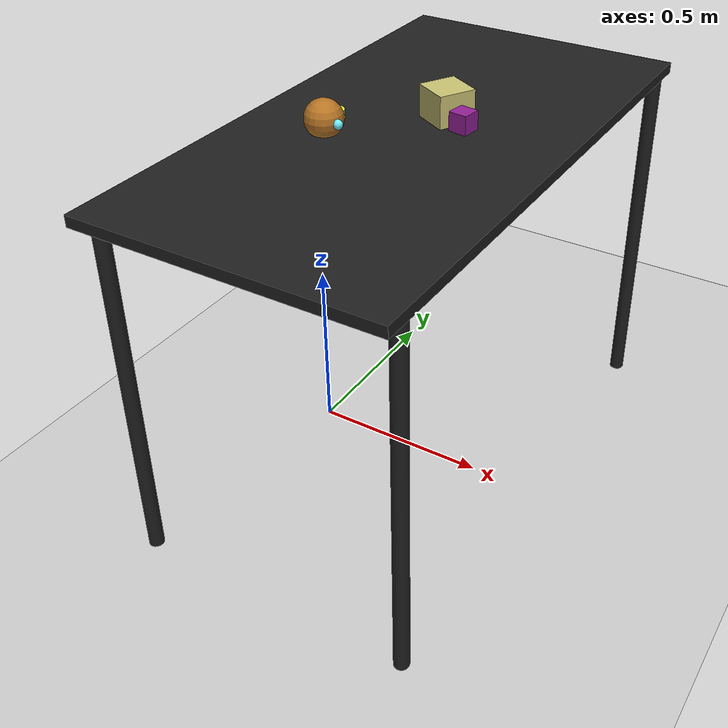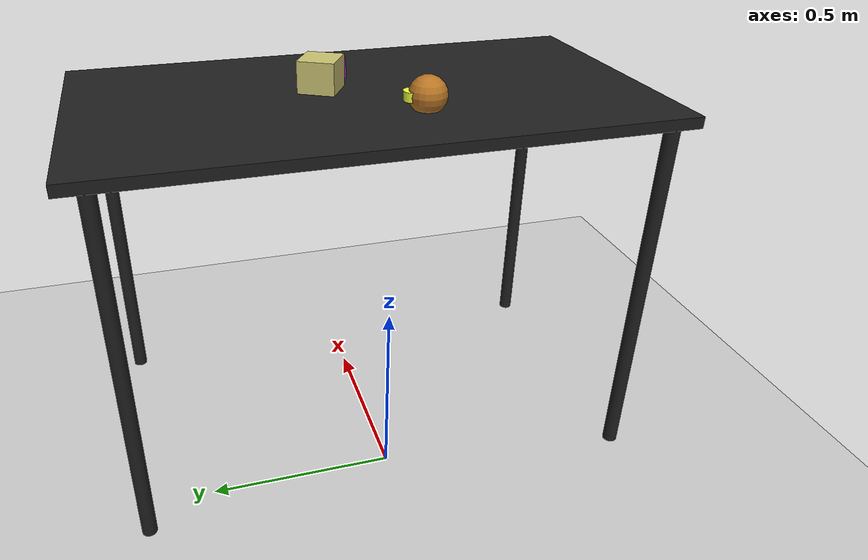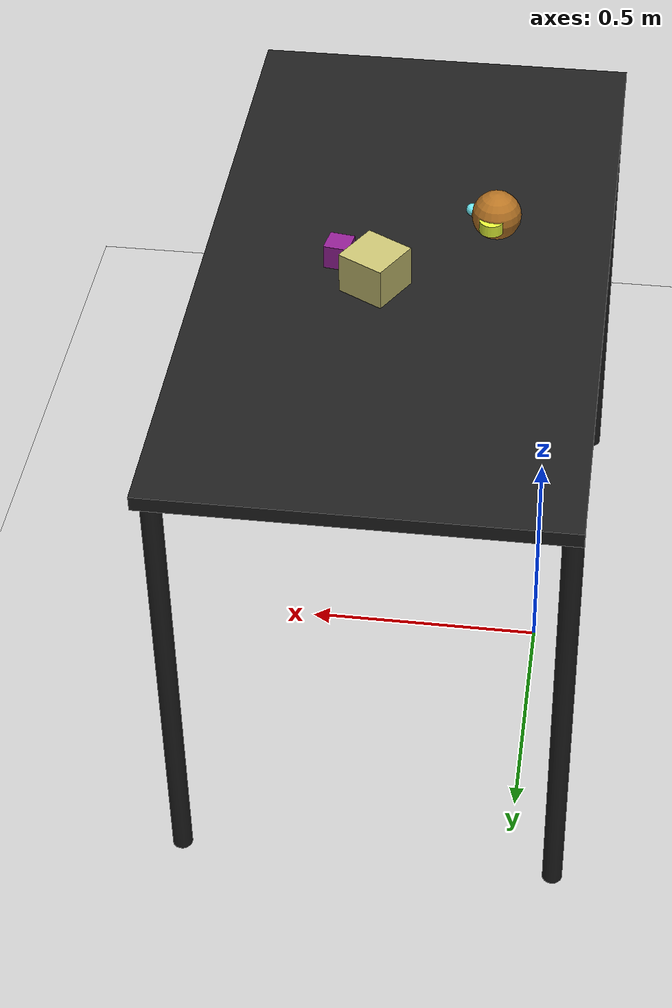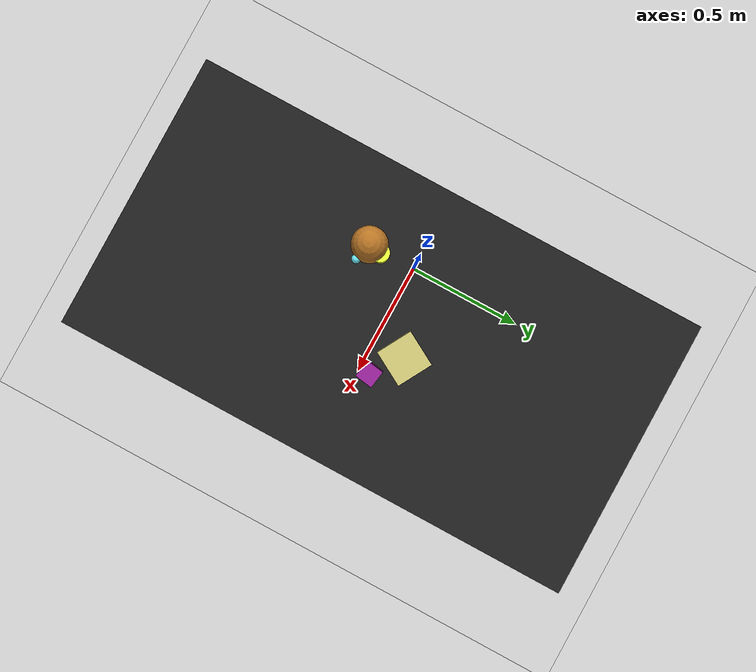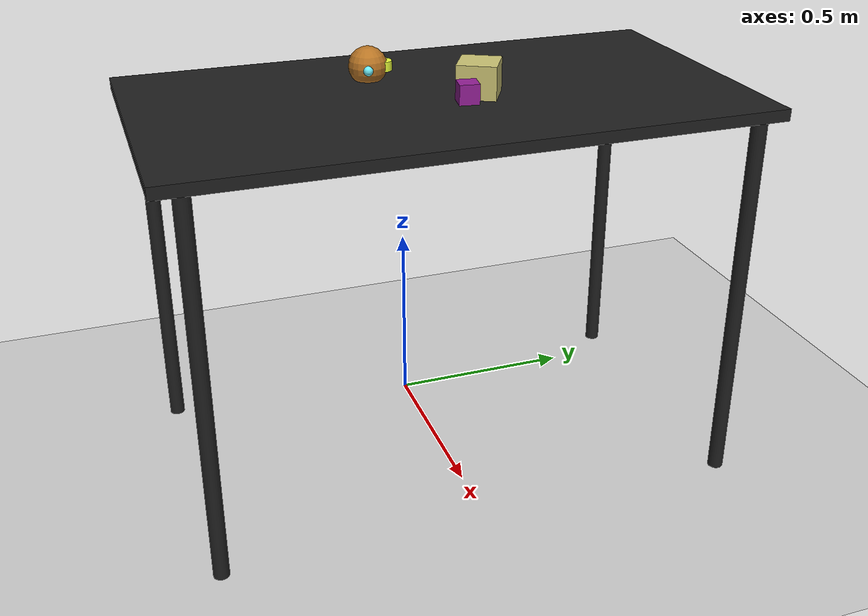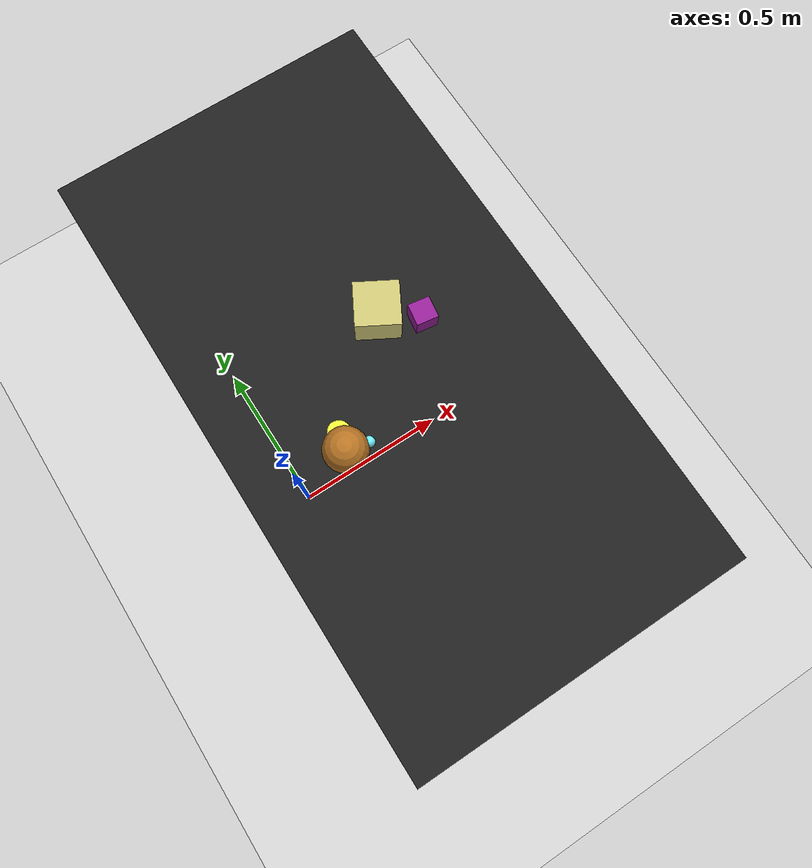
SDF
<?xml version="1.0" ?>
<sdf version="1.6">
  <world name="arm_world">
    <plugin filename="gz-sim-physics-system" name="gz::sim::systems::Physics">
      <engine>
        <filename>libgz-physics-bullet-featherstone-plugin.so</filename>
      </engine>
    </plugin>
    <plugin filename="gz-sim-user-commands-system" name="gz::sim::systems::UserCommands"/>
    <plugin filename="gz-sim-scene-broadcaster-system" name="gz::sim::systems::SceneBroadcaster"/>
    <plugin filename="gz-sim-sensors-system" name="gz::sim::systems::Sensors">
      <render_engine>ogre2</render_engine>
    </plugin>
    <gravity>0.0 0.0 -9.8</gravity>
    <scene>
      <shadows>false</shadows>
    </scene>
    <gui>
      <camera name="user_camera">
        <pose>0.75 -0.75 1.4 0 0.29 2.21</pose>
      </camera>
    </gui>
    <include>
      <uri>https://fuel.gazebosim.org/1.0/OpenRobotics/models/Sun</uri>
    </include>
    <model name="table">
      <static>true</static>
      <include>
        <uri>model://table</uri>
      </include>
      <pose>0.29 0 0 0 0 1.5708</pose>
    </model>
    <model name="ground_plane">
      <static>true</static>
      <link name="link">
        <collision name="collision">
          <geometry>
            <plane>
              <normal>0 0 1</normal>
            </plane>
          </geometry>
          <surface>
            <friction>
              <ode>
                <mu>1.0</mu>
                <mu2>1.0</mu2>
              </ode>
            </friction>
          </surface>
        </collision>
        <visual name="visual">
          <geometry>
            <plane>
              <normal>0 0 1</normal>
              <size>100 100</size>
            </plane>
          </geometry>
          <material>
            <ambient>0.8 0.8 0.8 1</ambient>
            <diffuse>0.8 0.8 0.8 1</diffuse>
            <specular>0.8 0.8 0.8 1</specular>
          </material>
        </visual>
      </link>
    </model>
    <model name="sphere_s_0">
      <pose>0.172 -0.139 1.05 0 0 1.02</pose>
      <link name="sphere_s_0_link">
        <inertial>
          <mass>0.05</mass>
          <inertia>
            <ixx>2.04e-7</ixx>
            <iyy>2.04e-7</iyy>
            <izz>3.9e-8</izz>
            <ixy>0</ixy>
            <ixz>0</ixz>
            <iyz>0</iyz>
          </inertia>
        </inertial>
        <collision name="sphere_s_0_collision">
          <geometry>
            <sphere>
              <radius>0.0125</radius>
            </sphere>
          </geometry>
          <surface>
            <friction>
              <ode>
                <mu>0.8</mu>
                <mu2>0.8</mu2>
                <fdir1>0 0 1</fdir1>
                <slip1>0.001</slip1>
                <slip2>0.001</slip2>
              </ode>
              <torsional>
                <coefficient>0.1</coefficient>
                <surface_radius>0.015</surface_radius>
                <use_patch_radius>true</use_patch_radius>
              </torsional>
            </friction>
            <contact>
              <ode>
                <kp>1e5</kp>
                <kd>10</kd>
                <max_vel>0.1</max_vel>
                <min_depth>0.001</min_depth>
                <soft_cfm>0.01</soft_cfm>
                <soft_erp>0.2</soft_erp>
              </ode>
            </contact>
            <bounce>
              <restitution_coefficient>0.2</restitution_coefficient>
              <threshold>0.01</threshold>
            </bounce>
          </surface>
        </collision>
        <visual name="sphere_s_0_visual">
          <geometry>
            <sphere>
              <radius>0.0125</radius>
            </sphere>
          </geometry>
          <material>
            <ambient>0.42 0.91 0.95 1</ambient>
            <diffuse>0.42 0.91 0.95 1</diffuse>
          </material>
        </visual>
        <velocity_decay>
          <linear>1</linear>
          <angular>1</angular>
        </velocity_decay>
      </link>
    </model>
    <model name="cube_l_1">
      <pose>0.339 0.093 1.05 0 0 1.06</pose>
      <link name="cube_l_1_link">
        <inertial>
          <mass>0.05</mass>
          <inertia>
            <ixx>2.04e-7</ixx>
            <iyy>2.04e-7</iyy>
            <izz>3.9e-8</izz>
            <ixy>0</ixy>
            <ixz>0</ixz>
            <iyz>0</iyz>
          </inertia>
        </inertial>
        <collision name="cube_l_1_collision">
          <geometry>
            <box>
              <size>0.1 0.1 0.1</size>
            </box>
          </geometry>
          <surface>
            <friction>
              <ode>
                <mu>0.8</mu>
                <mu2>0.8</mu2>
                <fdir1>0 0 1</fdir1>
                <slip1>0.001</slip1>
                <slip2>0.001</slip2>
              </ode>
              <torsional>
                <coefficient>0.1</coefficient>
                <surface_radius>0.015</surface_radius>
                <use_patch_radius>true</use_patch_radius>
              </torsional>
            </friction>
            <contact>
              <ode>
                <kp>1e5</kp>
                <kd>10</kd>
                <max_vel>0.1</max_vel>
                <min_depth>0.001</min_depth>
                <soft_cfm>0.01</soft_cfm>
                <soft_erp>0.2</soft_erp>
              </ode>
            </contact>
            <bounce>
              <restitution_coefficient>0.2</restitution_coefficient>
              <threshold>0.01</threshold>
            </bounce>
          </surface>
        </collision>
        <visual name="cube_l_1_visual">
          <geometry>
            <box>
              <size>0.1 0.1 0.1</size>
            </box>
          </geometry>
          <material>
            <ambient>0.79 0.76 0.45 1</ambient>
            <diffuse>0.79 0.76 0.45 1</diffuse>
          </material>
        </visual>
        <velocity_decay>
          <linear>1</linear>
          <angular>1</angular>
        </velocity_decay>
      </link>
    </model>
    <model name="cube_m_2">
      <pose>0.417 0.034 1.05 0 0 2.99</pose>
      <link name="cube_m_2_link">
        <inertial>
          <mass>0.05</mass>
          <inertia>
            <ixx>2.04e-7</ixx>
            <iyy>2.04e-7</iyy>
            <izz>3.9e-8</izz>
            <ixy>0</ixy>
            <ixz>0</ixz>
            <iyz>0</iyz>
          </inertia>
        </inertial>
        <collision name="cube_m_2_collision">
          <geometry>
            <box>
              <size>0.05 0.05 0.05</size>
            </box>
          </geometry>
          <surface>
            <friction>
              <ode>
                <mu>0.8</mu>
                <mu2>0.8</mu2>
                <fdir1>0 0 1</fdir1>
                <slip1>0.001</slip1>
                <slip2>0.001</slip2>
              </ode>
              <torsional>
                <coefficient>0.1</coefficient>
                <surface_radius>0.015</surface_radius>
                <use_patch_radius>true</use_patch_radius>
              </torsional>
            </friction>
            <contact>
              <ode>
                <kp>1e5</kp>
                <kd>10</kd>
                <max_vel>0.1</max_vel>
                <min_depth>0.001</min_depth>
                <soft_cfm>0.01</soft_cfm>
                <soft_erp>0.2</soft_erp>
              </ode>
            </contact>
            <bounce>
              <restitution_coefficient>0.2</restitution_coefficient>
              <threshold>0.01</threshold>
            </bounce>
          </surface>
        </collision>
        <visual name="cube_m_2_visual">
          <geometry>
            <box>
              <size>0.05 0.05 0.05</size>
            </box>
          </geometry>
          <material>
            <ambient>0.57 0.12 0.58 1</ambient>
            <diffuse>0.57 0.12 0.58 1</diffuse>
          </material>
        </visual>
        <velocity_decay>
          <linear>1</linear>
          <angular>1</angular>
        </velocity_decay>
      </link>
    </model>
    <model name="cylinder_m_3">
      <pose>0.129 -0.09 1.05 0 0 4.52</pose>
      <link name="cylinder_m_3_link">
        <inertial>
          <mass>0.05</mass>
          <inertia>
            <ixx>2.04e-7</ixx>
            <iyy>2.04e-7</iyy>
            <izz>3.9e-8</izz>
            <ixy>0</ixy>
            <ixz>0</ixz>
            <iyz>0</iyz>
          </inertia>
        </inertial>
        <collision name="cylinder_m_3_collision">
          <geometry>
            <cylinder>
              <radius>0.025</radius>
              <length>0.025</length>
            </cylinder>
          </geometry>
          <surface>
            <friction>
              <ode>
                <mu>0.8</mu>
                <mu2>0.8</mu2>
                <fdir1>0 0 1</fdir1>
                <slip1>0.001</slip1>
                <slip2>0.001</slip2>
              </ode>
              <torsional>
                <coefficient>0.1</coefficient>
                <surface_radius>0.015</surface_radius>
                <use_patch_radius>true</use_patch_radius>
              </torsional>
            </friction>
            <contact>
              <ode>
                <kp>1e5</kp>
                <kd>10</kd>
                <max_vel>0.1</max_vel>
                <min_depth>0.001</min_depth>
                <soft_cfm>0.01</soft_cfm>
                <soft_erp>0.2</soft_erp>
              </ode>
            </contact>
            <bounce>
              <restitution_coefficient>0.2</restitution_coefficient>
              <threshold>0.01</threshold>
            </bounce>
          </surface>
        </collision>
        <visual name="cylinder_m_3_visual">
          <geometry>
            <cylinder>
              <radius>0.025</radius>
              <length>0.025</length>
            </cylinder>
          </geometry>
          <material>
            <ambient>0.91 0.99 0.22 1</ambient>
            <diffuse>0.91 0.99 0.22 1</diffuse>
          </material>
        </visual>
        <velocity_decay>
          <linear>1</linear>
          <angular>1</angular>
        </velocity_decay>
      </link>
    </model>
    <model name="sphere_l_4">
      <pose>0.122 -0.126 1.05 0 0 1.1</pose>
      <link name="sphere_l_4_link">
        <inertial>
          <mass>0.05</mass>
          <inertia>
            <ixx>2.04e-7</ixx>
            <iyy>2.04e-7</iyy>
            <izz>3.9e-8</izz>
            <ixy>0</ixy>
            <ixz>0</ixz>
            <iyz>0</iyz>
          </inertia>
        </inertial>
        <collision name="sphere_l_4_collision">
          <geometry>
            <sphere>
              <radius>0.05</radius>
            </sphere>
          </geometry>
          <surface>
            <friction>
              <ode>
                <mu>0.8</mu>
                <mu2>0.8</mu2>
                <fdir1>0 0 1</fdir1>
                <slip1>0.001</slip1>
                <slip2>0.001</slip2>
              </ode>
              <torsional>
                <coefficient>0.1</coefficient>
                <surface_radius>0.015</surface_radius>
                <use_patch_radius>true</use_patch_radius>
              </torsional>
            </friction>
            <contact>
              <ode>
                <kp>1e5</kp>
                <kd>10</kd>
                <max_vel>0.1</max_vel>
                <min_depth>0.001</min_depth>
                <soft_cfm>0.01</soft_cfm>
                <soft_erp>0.2</soft_erp>
              </ode>
            </contact>
            <bounce>
              <restitution_coefficient>0.2</restitution_coefficient>
              <threshold>0.01</threshold>
            </bounce>
          </surface>
        </collision>
        <visual name="sphere_l_4_visual">
          <geometry>
            <sphere>
              <radius>0.05</radius>
            </sphere>
          </geometry>
          <material>
            <ambient>0.71 0.45 0.14 1</ambient>
            <diffuse>0.71 0.45 0.14 1</diffuse>
          </material>
        </visual>
        <velocity_decay>
          <linear>1</linear>
          <angular>1</angular>
        </velocity_decay>
      </link>
    </model>
  </world>
</sdf>

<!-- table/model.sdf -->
<sdf version="1.5">
  <model name="table">
    <static>true</static>
    <link name="link">
      <collision name="surface">
        <pose>0 0 1.0 0 0 0</pose>
        <geometry>
          <box>
            <size>1.5 0.8 0.03</size>
          </box>
        </geometry>
        <surface>
          <friction>
            <ode>
              <mu>0.6</mu>
              <mu2>0.6</mu2>
            </ode>
          </friction>
        </surface>
      </collision>
      <visual name="surface">
        <pose>0 0 1.0 0 0 0</pose>
        <geometry>
          <box>
            <size>1.5 0.8 0.03</size>
          </box>
        </geometry>
        <material>
          <script>
            <uri>file://media/materials/scripts/gazebo.material</uri>
            <name>Gazebo/Black</name>
          </script>
        </material>
      </visual>
      <collision name="front_left_leg">
        <pose>0.68 0.38 0.5 0 0 0</pose>
        <geometry>
          <cylinder>
            <radius>0.02</radius>
            <length>1.0</length>
          </cylinder>
        </geometry>
      </collision>
      <visual name="front_left_leg">
        <pose>0.68 0.38 0.5 0 0 0</pose>
        <geometry>
          <cylinder>
            <radius>0.02</radius>
            <length>1.0</length>
          </cylinder>
        </geometry>
        <material>
          <script>
            <uri>file://media/materials/scripts/gazebo.material</uri>
            <name>Gazebo/Black</name>
          </script>
        </material>
      </visual>
      <collision name="front_right_leg">
        <pose>0.68 -0.38 0.5 0 0 0</pose>
        <geometry>
          <cylinder>
            <radius>0.02</radius>
            <length>1.0</length>
          </cylinder>
        </geometry>
      </collision>
      <visual name="front_right_leg">
        <pose>0.68 -0.38 0.5 0 0 0</pose>
        <geometry>
          <cylinder>
            <radius>0.02</radius>
            <length>1.0</length>
          </cylinder>
        </geometry>
        <material>
          <script>
            <uri>file://media/materials/scripts/gazebo.material</uri>
            <name>Gazebo/Black</name>
          </script>
        </material>
      </visual>
      <collision name="back_right_leg">
        <pose>-0.68 -0.38 0.5 0 0 0</pose>
        <geometry>
          <cylinder>
            <radius>0.02</radius>
            <length>1.0</length>
          </cylinder>
        </geometry>
      </collision>
      <visual name="back_right_leg">
        <pose>-0.68 -0.38 0.5 0 0 0</pose>
        <geometry>
          <cylinder>
            <radius>0.02</radius>
            <length>1.0</length>
          </cylinder>
        </geometry>
        <material>
          <script>
            <uri>file://media/materials/scripts/gazebo.material</uri>
            <name>Gazebo/Black</name>
          </script>
        </material>
      </visual>
      <collision name="back_left_leg">
        <pose>-0.68 0.38 0.5 0 0 0</pose>
        <geometry>
          <cylinder>
            <radius>0.02</radius>
            <length>1.0</length>
          </cylinder>
        </geometry>
      </collision>
      <visual name="back_left_leg">
        <pose>-0.68 0.38 0.5 0 0 0</pose>
        <geometry>
          <cylinder>
            <radius>0.02</radius>
            <length>1.0</length>
          </cylinder>
        </geometry>
        <material>
          <script>
            <uri>file://media/materials/scripts/gazebo.material</uri>
            <name>Gazebo/Black</name>
          </script>
        </material>
      </visual>
    </link>
  </model>
</sdf>
